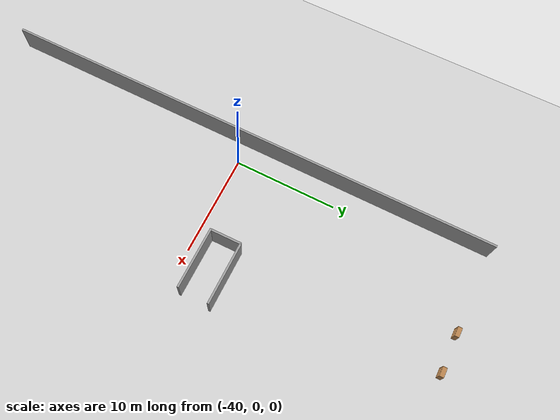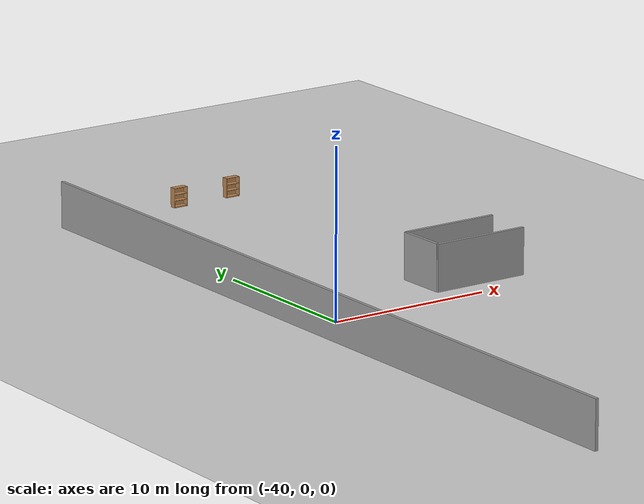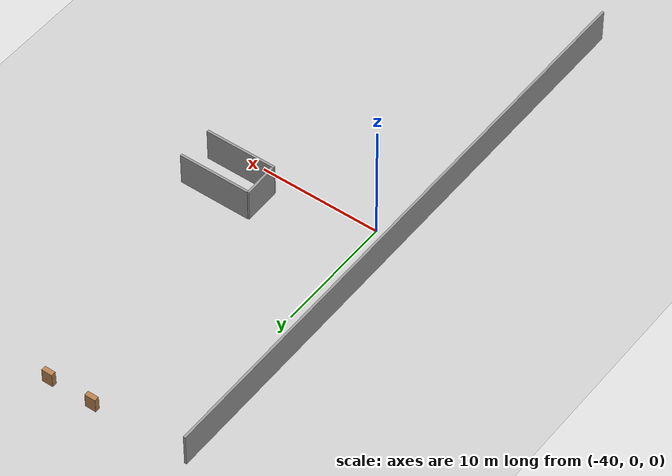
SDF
<sdf version="1.7">
 <world name="default">
  <model name="ground_plane">
   <static>1</static>
   <link name="link">
    <collision name="collision">
     <geometry><plane><normal>0 0 1</normal><size>100 100</size></plane></geometry>
     <surface>
      <contact><collide_bitmask>65535</collide_bitmask></contact>
      <friction><ode><mu>100</mu><mu2>50</mu2></ode></friction>
     </surface>
    </collision>
    <visual name="visual">
     <cast_shadows>0</cast_shadows>
     <geometry><plane><normal>0 0 1</normal><size>100 100</size></plane></geometry>
     <material>
      <script><uri>file://media/materials/scripts/gazebo.material</uri><name>Gazebo/Grey</name></script>
     </material>
    </visual>
   </link>
  </model>
  <model name="grey_wall_long">
   <static>1</static>
   <link name="link">
    <pose>0 0 1.4 0 -0 0</pose>
    <collision name="collision"><geometry><box><size>50 0.2 2.8</size></box></geometry></collision>
    <visual name="visual">
     <cast_shadows>0</cast_shadows>
     <geometry><box><size>50 0.2 2.8</size></box></geometry>
     <material>
      <script>
       <uri>model://grey_wall_long/materials/scripts</uri>
       <uri>model://grey_wall_long/materials/textures</uri>
       <name>vrc/grey_wall_long</name>
      </script>
     </material>
    </visual>
   </link>
   <pose>-42.0584 -0.541294 0 0 0 -1.56707</pose>
  </model>
  <model name="grey_wall_short">
   <static>1</static>
   <link name="link">
    <pose>0 0 1.4 0 -0 0</pose>
    <collision name="collision"><geometry><box><size>3 0.2 2.8</size></box></geometry></collision>
    <visual name="visual">
     <cast_shadows>0</cast_shadows>
     <geometry><box><size>3 0.2 2.8</size></box></geometry>
     <material>
      <script>
       <uri>model://grey_wall_short/materials/scripts</uri>
       <uri>model://grey_wall_short/materials/textures</uri>
       <name>vrc/grey_wall_short</name>
      </script>
     </material>
    </visual>
   </link>
   <pose>-32.0114 2.97374 0 0 0 -1.5524</pose>
  </model>
  <model name="grey_wall_media">
   <static>1</static>
   <link name="link">
    <pose>0 0 1.4 0 -0 0</pose>
    <collision name="collision"><geometry><box><size>6 0.2 2.8</size></box></geometry></collision>
    <visual name="visual">
     <cast_shadows>0</cast_shadows>
     <geometry><box><size>6 0.2 2.8</size></box></geometry>
     <material>
      <script>
       <uri>model://grey_wall_media/materials/scripts</uri>
       <uri>model://grey_wall_media/materials/textures</uri>
       <name>vrc/grey_wall_media</name>
      </script>
     </material>
    </visual>
   </link>
   <pose>-29 4.42421 0.00987 0 -0 0</pose>
  </model>
  <model name="grey_wall_media_clone_0">
   <static>1</static>
   <link name="link">
    <pose>0 0 1.4 0 -0 0</pose>
    <collision name="collision"><geometry><box><size>6 0.2 2.8</size></box></geometry></collision>
    <visual name="visual">
     <cast_shadows>0</cast_shadows>
     <geometry><box><size>6 0.2 2.8</size></box></geometry>
     <material>
      <script>
       <uri>model://grey_wall_media/materials/scripts</uri>
       <uri>model://grey_wall_media/materials/textures</uri>
       <name>vrc/grey_wall_media</name>
      </script>
     </material>
    </visual>
   </link>
   <pose>-29.0686 1.44223 0.00987 0 -0 0</pose>
  </model>
  <model name="Bookshelf">
   <static>1</static>
   <link name="link">
    <inertial><mass>1</mass></inertial>
    <collision name="back">
     <pose>0 0.005 0.6 0 -0 0</pose>
     <geometry><box><size>0.9 0.01 1.2</size></box></geometry>
    </collision>
    <visual name="visual1">
     <pose>0 0.005 0.6 0 -0 0</pose>
     <geometry><box><size>0.9 0.01 1.2</size></box></geometry>
     <material>
      <diffuse>1 1 1 1</diffuse>
      <script><uri>file://media/materials/scripts/gazebo.material</uri><name>Gazebo/Wood</name></script>
      <pbr><metal><albedo_map>model://Bookshelf/bookshelf_diffuse.jpg</albedo_map></metal></pbr>
     </material>
    </visual>
    <collision name="left_side">
     <pose>0.45 -0.195 0.6 0 -0 0</pose>
     <geometry><box><size>0.02 0.4 1.2</size></box></geometry>
    </collision>
    <visual name="visual2">
     <pose>0.45 -0.195 0.6 0 -0 0</pose>
     <geometry><box><size>0.02 0.4 1.2</size></box></geometry>
     <material>
      <diffuse>1 1 1 1</diffuse>
      <script><uri>file://media/materials/scripts/gazebo.material</uri><name>Gazebo/Wood</name></script>
      <pbr><metal><albedo_map>model://Bookshelf/bookshelf_diffuse.jpg</albedo_map></metal></pbr>
     </material>
    </visual>
    <collision name="right_side">
     <pose>-0.45 -0.195 0.6 0 -0 0</pose>
     <geometry><box><size>0.02 0.4 1.2</size></box></geometry>
    </collision>
    <visual name="visual3">
     <pose>-0.45 -0.195 0.6 0 -0 0</pose>
     <geometry><box><size>0.02 0.4 1.2</size></box></geometry>
     <material>
      <diffuse>1 1 1 1</diffuse>
      <script><uri>file://media/materials/scripts/gazebo.material</uri><name>Gazebo/Wood</name></script>
      <pbr><metal><albedo_map>model://Bookshelf/bookshelf_diffuse.jpg</albedo_map></metal></pbr>
     </material>
    </visual>
    <collision name="bottom">
     <pose>0 -0.195 0.03 0 -0 0</pose>
     <geometry><box><size>0.88 0.4 0.06</size></box></geometry>
    </collision>
    <visual name="visual4">
     <pose>0 -0.195 0.03 0 -0 0</pose>
     <geometry><box><size>0.88 0.4 0.06</size></box></geometry>
     <material>
      <diffuse>1 1 1 1</diffuse>
      <script><uri>file://media/materials/scripts/gazebo.material</uri><name>Gazebo/Wood</name></script>
      <pbr><metal><albedo_map>model://Bookshelf/bookshelf_diffuse.jpg</albedo_map></metal></pbr>
     </material>
    </visual>
    <collision name="top">
     <pose>0 -0.195 1.19 0 -0 0</pose>
     <geometry><box><size>0.88 0.4 0.02</size></box></geometry>
    </collision>
    <visual name="visual5">
     <pose>0 -0.195 1.19 0 -0 0</pose>
     <geometry><box><size>0.88 0.4 0.02</size></box></geometry>
     <material>
      <diffuse>1 1 1 1</diffuse>
      <script><uri>file://media/materials/scripts/gazebo.material</uri><name>Gazebo/Wood</name></script>
      <pbr><metal><albedo_map>model://Bookshelf/bookshelf_diffuse.jpg</albedo_map></metal></pbr>
     </material>
    </visual>
    <collision name="low_shelf">
     <pose>0 -0.195 0.43 0 -0 0</pose>
     <geometry><box><size>0.88 0.4 0.02</size></box></geometry>
    </collision>
    <visual name="visual6">
     <pose>0 -0.195 0.43 0 -0 0</pose>
     <geometry><box><size>0.88 0.4 0.02</size></box></geometry>
     <material>
      <diffuse>1 1 1 1</diffuse>
      <script><uri>file://media/materials/scripts/gazebo.material</uri><name>Gazebo/Wood</name></script>
      <pbr><metal><albedo_map>model://Bookshelf/bookshelf_diffuse.jpg</albedo_map></metal></pbr>
     </material>
    </visual>
    <collision name="high_shelf">
     <pose>0 -0.195 0.8 0 -0 0</pose>
     <geometry><box><size>0.88 0.4 0.02</size></box></geometry>
    </collision>
    <visual name="visual7">
     <pose>0 -0.195 0.8 0 -0 0</pose>
     <geometry><box><size>0.88 0.4 0.02</size></box></geometry>
     <material>
      <diffuse>1 1 1 1</diffuse>
      <script><uri>file://media/materials/scripts/gazebo.material</uri><name>Gazebo/Wood</name></script>
      <pbr><metal><albedo_map>model://Bookshelf/bookshelf_diffuse.jpg</albedo_map></metal></pbr>
     </material>
    </visual>
   </link>
   <pose>-30.3238 24.6424 -0.021454 0 -0 0</pose>
  </model>
  <model name="Bookshelf_clone">
   <static>1</static>
   <link name="link">
    <inertial><mass>1</mass></inertial>
    <collision name="back">
     <pose>0 0.005 0.6 0 -0 0</pose>
     <geometry><box><size>0.9 0.01 1.2</size></box></geometry>
    </collision>
    <visual name="visual1">
     <pose>0 0.005 0.6 0 -0 0</pose>
     <geometry><box><size>0.9 0.01 1.2</size></box></geometry>
     <material>
      <diffuse>1 1 1 1</diffuse>
      <script><uri>file://media/materials/scripts/gazebo.material</uri><name>Gazebo/Wood</name></script>
      <pbr><metal><albedo_map>model://Bookshelf/bookshelf_diffuse.jpg</albedo_map></metal></pbr>
     </material>
    </visual>
    <collision name="left_side">
     <pose>0.45 -0.195 0.6 0 -0 0</pose>
     <geometry><box><size>0.02 0.4 1.2</size></box></geometry>
    </collision>
    <visual name="visual2">
     <pose>0.45 -0.195 0.6 0 -0 0</pose>
     <geometry><box><size>0.02 0.4 1.2</size></box></geometry>
     <material>
      <diffuse>1 1 1 1</diffuse>
      <script><uri>file://media/materials/scripts/gazebo.material</uri><name>Gazebo/Wood</name></script>
      <pbr><metal><albedo_map>model://Bookshelf/bookshelf_diffuse.jpg</albedo_map></metal></pbr>
     </material>
    </visual>
    <collision name="right_side">
     <pose>-0.45 -0.195 0.6 0 -0 0</pose>
     <geometry><box><size>0.02 0.4 1.2</size></box></geometry>
    </collision>
    <visual name="visual3">
     <pose>-0.45 -0.195 0.6 0 -0 0</pose>
     <geometry><box><size>0.02 0.4 1.2</size></box></geometry>
     <material>
      <diffuse>1 1 1 1</diffuse>
      <script><uri>file://media/materials/scripts/gazebo.material</uri><name>Gazebo/Wood</name></script>
      <pbr><metal><albedo_map>model://Bookshelf/bookshelf_diffuse.jpg</albedo_map></metal></pbr>
     </material>
    </visual>
    <collision name="bottom">
     <pose>0 -0.195 0.03 0 -0 0</pose>
     <geometry><box><size>0.88 0.4 0.06</size></box></geometry>
    </collision>
    <visual name="visual4">
     <pose>0 -0.195 0.03 0 -0 0</pose>
     <geometry><box><size>0.88 0.4 0.06</size></box></geometry>
     <material>
      <diffuse>1 1 1 1</diffuse>
      <script><uri>file://media/materials/scripts/gazebo.material</uri><name>Gazebo/Wood</name></script>
      <pbr><metal><albedo_map>model://Bookshelf/bookshelf_diffuse.jpg</albedo_map></metal></pbr>
     </material>
    </visual>
    <collision name="top">
     <pose>0 -0.195 1.19 0 -0 0</pose>
     <geometry><box><size>0.88 0.4 0.02</size></box></geometry>
    </collision>
    <visual name="visual5">
     <pose>0 -0.195 1.19 0 -0 0</pose>
     <geometry><box><size>0.88 0.4 0.02</size></box></geometry>
     <material>
      <diffuse>1 1 1 1</diffuse>
      <script><uri>file://media/materials/scripts/gazebo.material</uri><name>Gazebo/Wood</name></script>
      <pbr><metal><albedo_map>model://Bookshelf/bookshelf_diffuse.jpg</albedo_map></metal></pbr>
     </material>
    </visual>
    <collision name="low_shelf">
     <pose>0 -0.195 0.43 0 -0 0</pose>
     <geometry><box><size>0.88 0.4 0.02</size></box></geometry>
    </collision>
    <visual name="visual6">
     <pose>0 -0.195 0.43 0 -0 0</pose>
     <geometry><box><size>0.88 0.4 0.02</size></box></geometry>
     <material>
      <diffuse>1 1 1 1</diffuse>
      <script><uri>file://media/materials/scripts/gazebo.material</uri><name>Gazebo/Wood</name></script>
      <pbr><metal><albedo_map>model://Bookshelf/bookshelf_diffuse.jpg</albedo_map></metal></pbr>
     </material>
    </visual>
    <collision name="high_shelf">
     <pose>0 -0.195 0.8 0 -0 0</pose>
     <geometry><box><size>0.88 0.4 0.02</size></box></geometry>
    </collision>
    <visual name="visual7">
     <pose>0 -0.195 0.8 0 -0 0</pose>
     <geometry><box><size>0.88 0.4 0.02</size></box></geometry>
     <material>
      <diffuse>1 1 1 1</diffuse>
      <script><uri>file://media/materials/scripts/gazebo.material</uri><name>Gazebo/Wood</name></script>
      <pbr><metal><albedo_map>model://Bookshelf/bookshelf_diffuse.jpg</albedo_map></metal></pbr>
     </material>
    </visual>
   </link>
   <pose>-34.0714 24.5973 -0.021454 0 -0 0</pose>
  </model>
 </world>
</sdf>
